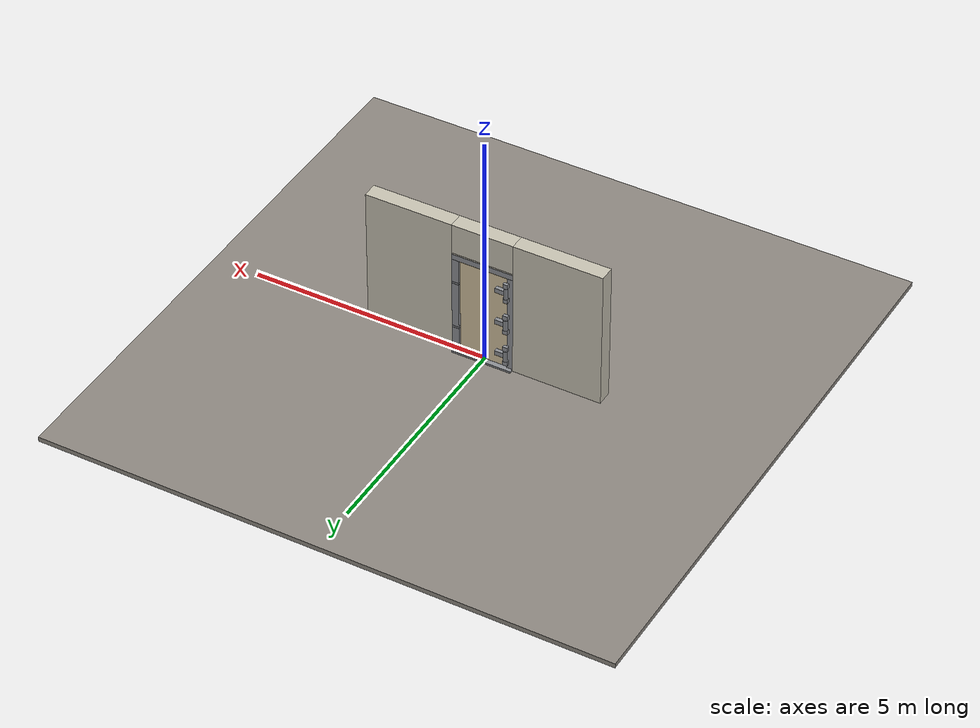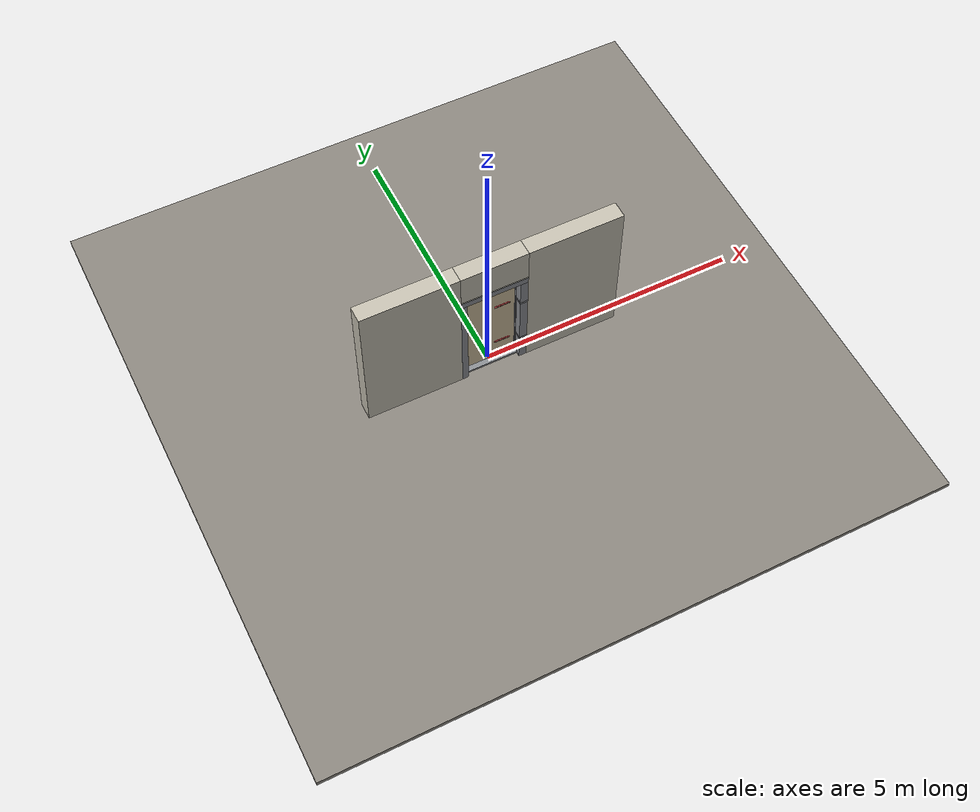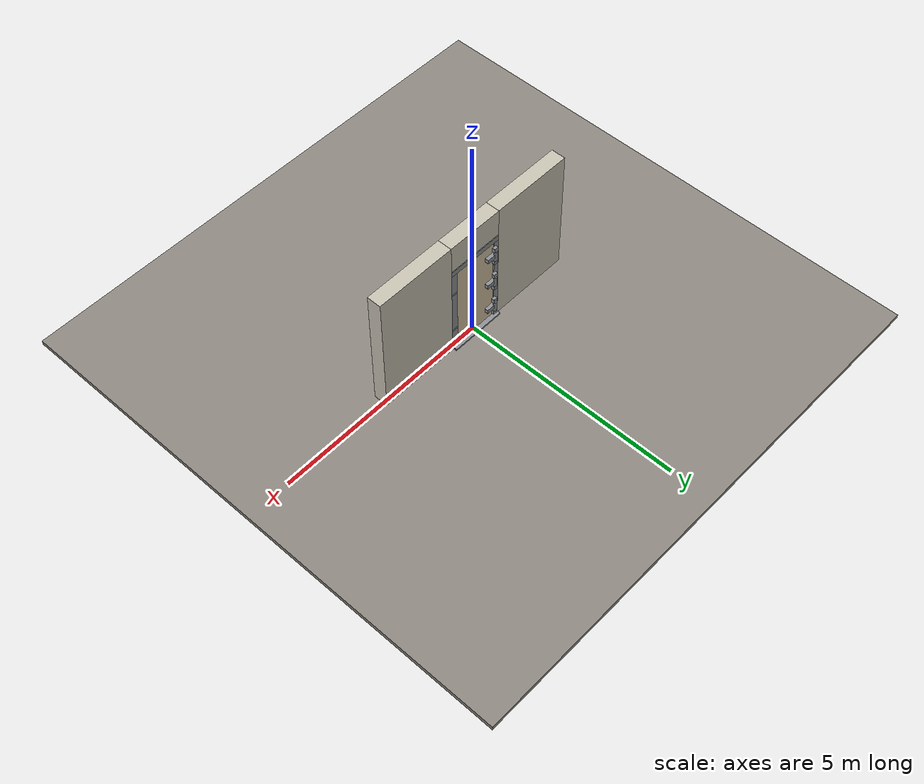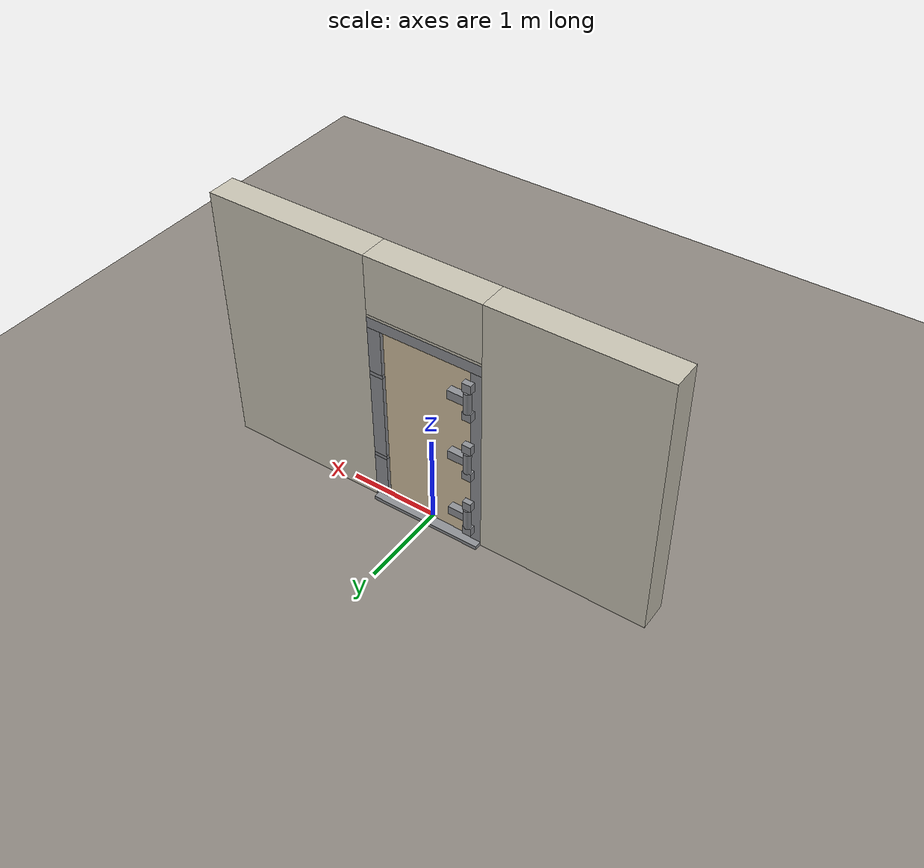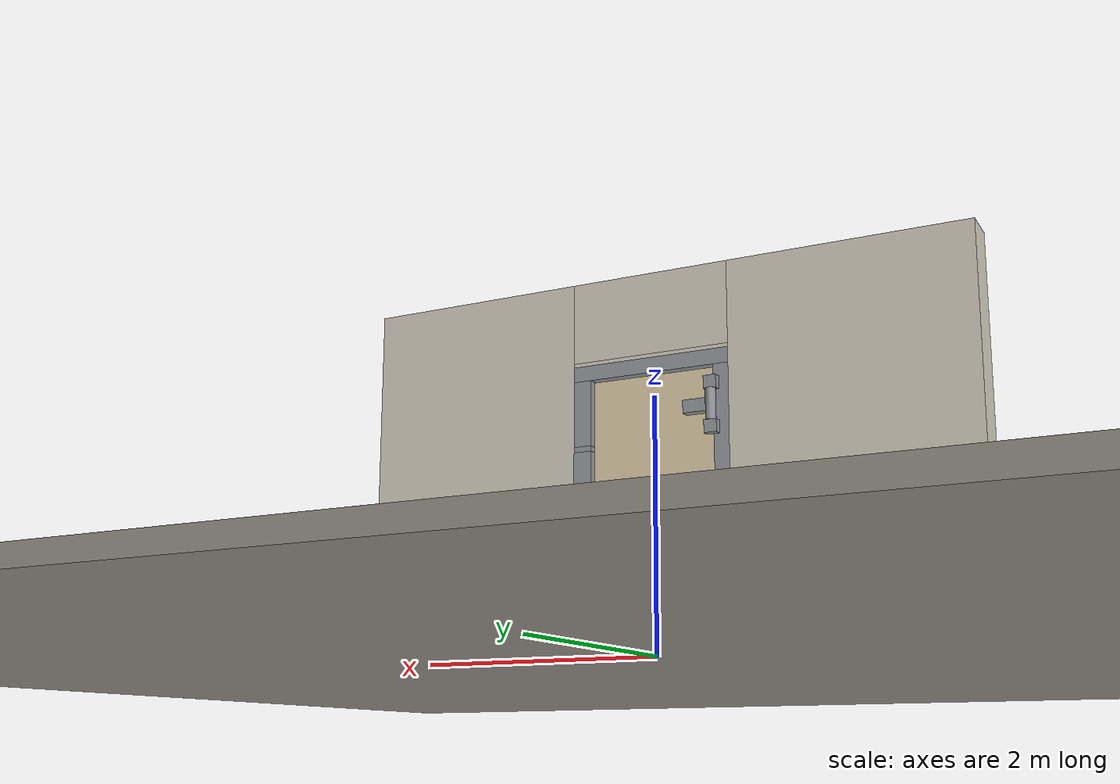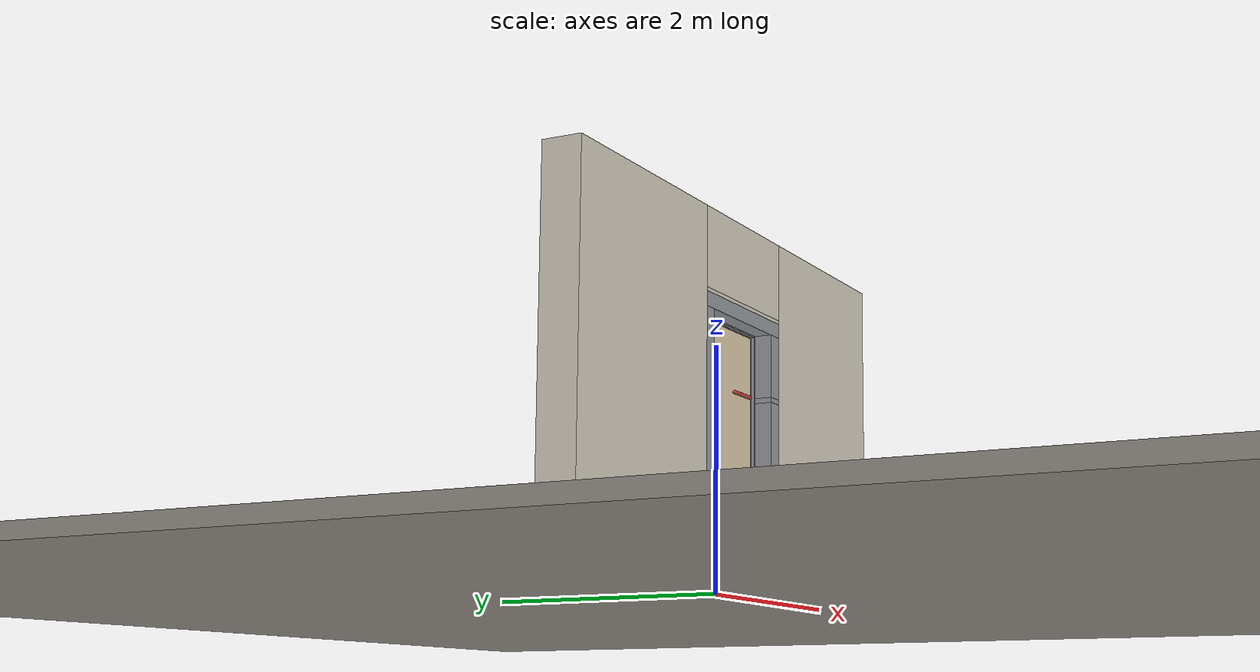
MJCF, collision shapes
<?xml version="1.0" ?>
<mujoco model="db0623_blast_simple">
  <compiler angle="radian" meshdir="../../hardware" texturedir="../../textures" autolimits="true" inertiafromgeom="false"/>
  <option timestep="0.002" integrator="implicitfast" cone="elliptic" impratio="10" noslip_iterations="3">
    <flag multiccd="enable"/>
  </option>
  <size memory="16M"/>
  <default>
    <geom condim="4" solref="0.005 1" solimp="0.95 0.99 0.001"/>
    <joint solreflimit="0.005 1" solimplimit="0.95 0.99 0.001"/>
    <tendon solreflimit="0.005 1"/>
    <equality solref="0.002 1"/>
  </default>
  <visual>
    <headlight ambient="0.4 0.4 0.4" diffuse="0.7 0.7 0.7" specular="0.2 0.2 0.2"/>
    <quality shadowsize="4096"/>
    <map znear="0.01" zfar="60"/>
  </visual>
  <asset>
    <mesh name="lever_c7a1f2892f" file="lever_c7a1f2892f.obj"/>
    <material name="mat_floor" rgba="0.55 0.53 0.5 1" specular="0.2" shininess="0.15" reflectance="0"/>
    <material name="mat_wall" rgba="0.78 0.76 0.7 1" specular="0.2" shininess="0.1" reflectance="0"/>
    <material name="mat_leaf" rgba="0.82 0.75 0.62 1" specular="0.23" shininess="0.45" reflectance="0.02"/>
    <material name="mat_op_steel_painted" rgba="0.45 0.48 0.52 1" specular="0.32" shininess="0.6" reflectance="0.08"/>
    <material name="mat_vault_bolt" rgba="0.75 0.76 0.77 1" specular="0.8" shininess="0.65" reflectance="0.4"/>
    <material name="mat_frame" rgba="0.55 0.56 0.58 1" specular="0.8" shininess="0.55" reflectance="0.4"/>
    <material name="mat_hinge" rgba="0.55 0.56 0.58 1" specular="0.8" shininess="0.55" reflectance="0.4"/>
    <texture name="skybox" type="skybox" builtin="gradient" rgb1="0.6 0.7 0.85" rgb2="0.9 0.92 0.95" width="256" height="256"/>
  </asset>
  <worldbody>
    <light name="sun" pos="1.5 -2.5 4" dir="-0.3 0.5 -0.8" directional="true" diffuse="0.8 0.8 0.8" specular="0.3 0.3 0.3" castshadow="true"/>
    <light name="fill" pos="-1.5 2.5 3" dir="0.3 -0.5 -0.7" directional="true" diffuse="0.35 0.35 0.4" castshadow="false"/>
    <camera name="robot_view" pos="0 -2.739375 1.829625" xyaxes="1 0 0 0 0.26963 0.962964" fovy="52"/>
    <camera name="far_view" pos="0 2.579375 1.829625" xyaxes="-1 0 0 0 -0.26963 0.962964" fovy="52"/>
    <camera name="iso" pos="2.021125 -2.313875 2.255125" xyaxes="0.741536 0.670913 0 -0.242917 0.268487 0.932151" fovy="46"/>
    <camera name="detail_handle" pos="0.303 -0.92 0.855" xyaxes="0.97561 0.219512 0 -0.070934 0.315262 0.94635" fovy="38"/>
    <geom name="floor" type="box" size="6 6 0.05" pos="0 0 -0.05" material="mat_floor" group="0" contype="1" conaffinity="1" friction="0.8 0.005 0.0001" density="2400"/>
    <geom name="wall_left" type="box" size="0.9335 0.16 1.485" pos="-1.5665 -0.08 1.485" material="mat_wall" group="0" contype="1" conaffinity="1" friction="0.6 0.005 0.0001" density="800"/>
    <geom name="wall_right" type="box" size="0.9185 0.16 1.485" pos="1.5815 -0.08 1.485" material="mat_wall" group="0" contype="1" conaffinity="1" friction="0.6 0.005 0.0001" density="800"/>
    <geom name="wall_header" type="box" size="0.648 0.16 0.325" pos="0.015 -0.08 2.645" material="mat_wall" group="0" contype="1" conaffinity="1" friction="0.6 0.005 0.0001" density="800"/>
    <geom name="jamb_hinge" type="box" size="0.06 0.16 1.085" pos="-0.573 -0.08 1.085" material="mat_frame" group="0" contype="1" conaffinity="1" friction="0.6 0.005 0.0001" density="300"/>
    <geom name="strike_575_wall_n" type="box" size="0.075 0.111 0.021" pos="0.588 -0.129 0.575" material="mat_frame" group="0" contype="1" conaffinity="1" friction="0.6 0.005 0.0001" density="300"/>
    <geom name="strike_575_wall_p" type="box" size="0.075 0.031 0.021" pos="0.588 0.049 0.575" material="mat_frame" group="0" contype="1" conaffinity="1" friction="0.6 0.005 0.0001" density="300"/>
    <geom name="strike_575_back" type="box" size="0.039 0.018 0.021" pos="0.624 0 0.575" material="mat_frame" group="0" contype="1" conaffinity="1" friction="0.6 0.005 0.0001" density="300"/>
    <geom name="strike_1625_wall_n" type="box" size="0.075 0.111 0.021" pos="0.588 -0.129 1.625" material="mat_frame" group="0" contype="1" conaffinity="1" friction="0.6 0.005 0.0001" density="300"/>
    <geom name="strike_1625_wall_p" type="box" size="0.075 0.031 0.021" pos="0.588 0.049 1.625" material="mat_frame" group="0" contype="1" conaffinity="1" friction="0.6 0.005 0.0001" density="300"/>
    <geom name="strike_1625_back" type="box" size="0.039 0.018 0.021" pos="0.624 0 1.625" material="mat_frame" group="0" contype="1" conaffinity="1" friction="0.6 0.005 0.0001" density="300"/>
    <geom name="jamb_strike_0" type="box" size="0.075 0.16 0.277" pos="0.588 -0.08 0.277" material="mat_frame" group="0" contype="1" conaffinity="1" friction="0.6 0.005 0.0001" density="300"/>
    <geom name="jamb_strike_1" type="box" size="0.075 0.16 0.504" pos="0.588 -0.08 1.1" material="mat_frame" group="0" contype="1" conaffinity="1" friction="0.6 0.005 0.0001" density="300"/>
    <geom name="jamb_strike_2" type="box" size="0.075 0.16 0.262" pos="0.588 -0.08 1.908" material="mat_frame" group="0" contype="1" conaffinity="1" friction="0.6 0.005 0.0001" density="300"/>
    <geom name="jamb_head" type="box" size="0.648 0.16 0.06" pos="0.015 -0.08 2.23" material="mat_frame" group="0" contype="1" conaffinity="1" friction="0.6 0.005 0.0001" density="300"/>
    <geom name="head_stud" type="box" size="0.648 0.16 0.015" pos="0.015 -0.08 2.305" material="mat_wall" group="0" contype="1" conaffinity="1" friction="0.6 0.005 0.0001" density="500"/>
    <geom name="stop_hinge" type="box" size="0.0055 0.016 1.085" pos="-0.5075 -0.0765 1.085" material="mat_frame" group="0" contype="1" conaffinity="1" friction="0.6 0.005 0.0001" density="300"/>
    <geom name="stop_strike" type="box" size="0.0055 0.016 1.085" pos="0.5075 -0.0765 1.085" material="mat_frame" group="0" contype="1" conaffinity="1" friction="0.6 0.005 0.0001" density="300"/>
    <geom name="stop_head" type="box" size="0.513 0.016 0.0055" pos="0 -0.0765 2.1645" material="mat_frame" group="0" contype="1" conaffinity="1" friction="0.6 0.005 0.0001" density="300"/>
    <geom name="sill_step" type="box" size="0.633 0.16 0.02" pos="0 0 0.02" material="mat_frame" group="0" contype="1" conaffinity="1" friction="0.6 0.005 0.0001" density="7850"/>
    <geom name="hinge_0_bracket_b" type="box" size="0.05 0.0325 0.05" pos="-0.507 0.1125 0.18" material="mat_hinge" group="1" contype="0" conaffinity="0" density="7850"/>
    <geom name="hinge_0_bracket_t" type="box" size="0.05 0.0325 0.05" pos="-0.507 0.1125 0.52" material="mat_hinge" group="1" contype="0" conaffinity="0" density="7850"/>
    <geom name="hinge_1_bracket_b" type="box" size="0.05 0.0325 0.05" pos="-0.507 0.1125 0.93" material="mat_hinge" group="1" contype="0" conaffinity="0" density="7850"/>
    <geom name="hinge_1_bracket_t" type="box" size="0.05 0.0325 0.05" pos="-0.507 0.1125 1.27" material="mat_hinge" group="1" contype="0" conaffinity="0" density="7850"/>
    <geom name="hinge_2_bracket_b" type="box" size="0.05 0.0325 0.05" pos="-0.507 0.1125 1.68" material="mat_hinge" group="1" contype="0" conaffinity="0" density="7850"/>
    <geom name="hinge_2_bracket_t" type="box" size="0.05 0.0325 0.05" pos="-0.507 0.1125 2.02" material="mat_hinge" group="1" contype="0" conaffinity="0" density="7850"/>
    <site name="approach_point" pos="0 -1.5 0" quat="1 0 0 0" size="0.05" rgba="0.2 0.9 0.2 0.5" group="4"/>
    <site name="goal_point" pos="0 1.5 0" quat="1 0 0 0" size="0.05" rgba="0.2 0.9 0.2 0.5" group="4"/>
    <site name="door_plane_center" pos="0 0 1.085" quat="1 0 0 0" size="0.02" rgba="0.2 0.9 0.2 0.5" group="4"/>
    <body name="leaf" pos="-0.513 0 0">
      <inertial pos="0.477364 0.007257 1.1" mass="1025.680363" quat="0.508418 0.491438 -0.508418 0.491438" diaginertia="94.099185318 379.463600808 469.854668922"/>
      <joint name="leaf_hinge" type="hinge" axis="0 0 1" pos="0.006 0.125 0" limited="true" range="0 1.745329" damping="0.42926" frictionloss="36.054617" armature="0.5"/>
      <geom name="leaf_slab" type="box" size="0.5 0.06 1.05" pos="0.506 0 1.1" material="mat_leaf" group="0" contype="1" conaffinity="1" friction="0.45 0.005 0.0001" density="1"/>
      <geom name="hinge_0" type="cylinder" size="0.04 0.12" pos="0.006 0.125 0.35" material="mat_hinge" group="1" contype="0" conaffinity="0" density="7850"/>
      <geom name="hinge_0_arm" type="box" size="0.11 0.04 0.05" pos="0.116 0.1 0.35" material="mat_hinge" group="1" contype="0" conaffinity="0" density="7850"/>
      <geom name="hinge_1" type="cylinder" size="0.04 0.12" pos="0.006 0.125 1.1" material="mat_hinge" group="1" contype="0" conaffinity="0" density="7850"/>
      <geom name="hinge_1_arm" type="box" size="0.11 0.04 0.05" pos="0.116 0.1 1.1" material="mat_hinge" group="1" contype="0" conaffinity="0" density="7850"/>
      <geom name="hinge_2" type="cylinder" size="0.04 0.12" pos="0.006 0.125 1.85" material="mat_hinge" group="1" contype="0" conaffinity="0" density="7850"/>
      <geom name="hinge_2_arm" type="box" size="0.11 0.04 0.05" pos="0.116 0.1 1.85" material="mat_hinge" group="1" contype="0" conaffinity="0" density="7850"/>
      <body name="dog_0" pos="0.886 0 0.575">
        <inertial pos="-0.138181 -0.112433 0" mass="4.666646" quat="-0.044336 0 0 0.999017" diaginertia="0.001676913 0.056977311 0.05779918"/>
        <joint name="dog_0_hinge" type="hinge" axis="0 -1 0" limited="true" range="0 1.5708" damping="1" frictionloss="6" armature="0.005"/>
        <geom name="dog_0_lever" type="mesh" mesh="lever_c7a1f2892f" pos="0 -0.06 0" quat="0.707107 0.707107 0 0" material="mat_op_steel_painted" group="1" contype="0" conaffinity="0" density="7800"/>
        <geom name="dog_0_lever_col" type="capsule" size="0.015 0.14" pos="-0.15 -0.12 0" quat="0.707107 0 0.707107 0" material="mat_op_steel_painted" group="3" contype="1" conaffinity="1" rgba="0.8 0.3 0.3 0.25" friction="0.7 0.01 0.0001" density="7800"/>
        <site name="dog_0_grip" pos="-0.25 -0.12 0" quat="1 0 0 0" size="0.012" rgba="0.2 0.9 0.2 0.5" group="4"/>
      </body>
      <body name="bolt_0" pos="1.006 0 0.575">
        <inertial pos="-0.017 0 0" mass="0.980673" quat="0 0 0.707107 0.707107" diaginertia="0.000122078 0.002046701 0.002046701"/>
        <joint name="bolt_0_slide" type="slide" axis="-1 0 0" limited="true" range="0 0.066" damping="20" frictionloss="25" armature="0.1"/>
        <geom name="bolt_0_geom" type="capsule" size="0.016 0.067" pos="-0.017 0 0" quat="0.707107 0 0.707107 0" material="mat_vault_bolt" group="0" contype="1" conaffinity="1" friction="0.3 0.005 0.0001" density="7850"/>
      </body>
      <body name="dog_1" pos="0.886 0 1.625">
        <inertial pos="-0.138181 -0.112433 0" mass="4.666646" quat="-0.044336 0 0 0.999017" diaginertia="0.001676913 0.056977311 0.05779918"/>
        <joint name="dog_1_hinge" type="hinge" axis="0 -1 0" limited="true" range="0 1.5708" damping="1" frictionloss="6" armature="0.005"/>
        <geom name="dog_1_lever" type="mesh" mesh="lever_c7a1f2892f" pos="0 -0.06 0" quat="0.707107 0.707107 0 0" material="mat_op_steel_painted" group="1" contype="0" conaffinity="0" density="7800"/>
        <geom name="dog_1_lever_col" type="capsule" size="0.015 0.14" pos="-0.15 -0.12 0" quat="0.707107 0 0.707107 0" material="mat_op_steel_painted" group="3" contype="1" conaffinity="1" rgba="0.8 0.3 0.3 0.25" friction="0.7 0.01 0.0001" density="7800"/>
        <site name="dog_1_grip" pos="-0.25 -0.12 0" quat="1 0 0 0" size="0.012" rgba="0.2 0.9 0.2 0.5" group="4"/>
      </body>
      <body name="bolt_1" pos="1.006 0 1.625">
        <inertial pos="-0.017 0 0" mass="0.980673" quat="0 0 0.707107 0.707107" diaginertia="0.000122078 0.002046701 0.002046701"/>
        <joint name="bolt_1_slide" type="slide" axis="-1 0 0" limited="true" range="0 0.066" damping="20" frictionloss="25" armature="0.1"/>
        <geom name="bolt_1_geom" type="capsule" size="0.016 0.067" pos="-0.017 0 0" quat="0.707107 0 0.707107 0" material="mat_vault_bolt" group="0" contype="1" conaffinity="1" friction="0.3 0.005 0.0001" density="7850"/>
      </body>
    </body>
  </worldbody>
  <equality>
    <joint name="lever_bolt_0" joint1="bolt_0_slide" joint2="dog_0_hinge" polycoef="0 0.042017 0 0 0" active="true"/>
    <joint name="lever_bolt_1" joint1="bolt_1_slide" joint2="dog_1_hinge" polycoef="0 0.042017 0 0 0" active="true"/>
  </equality>
  <sensor>
    <jointpos name="leaf_hinge_pos" joint="leaf_hinge"/>
    <jointvel name="leaf_hinge_vel" joint="leaf_hinge"/>
    <jointpos name="dog_0_hinge_pos" joint="dog_0_hinge"/>
    <jointvel name="dog_0_hinge_vel" joint="dog_0_hinge"/>
    <jointpos name="bolt_0_slide_pos" joint="bolt_0_slide"/>
    <jointvel name="bolt_0_slide_vel" joint="bolt_0_slide"/>
    <jointpos name="dog_1_hinge_pos" joint="dog_1_hinge"/>
    <jointvel name="dog_1_hinge_vel" joint="dog_1_hinge"/>
    <jointpos name="bolt_1_slide_pos" joint="bolt_1_slide"/>
    <jointvel name="bolt_1_slide_vel" joint="bolt_1_slide"/>
  </sensor>
</mujoco>
